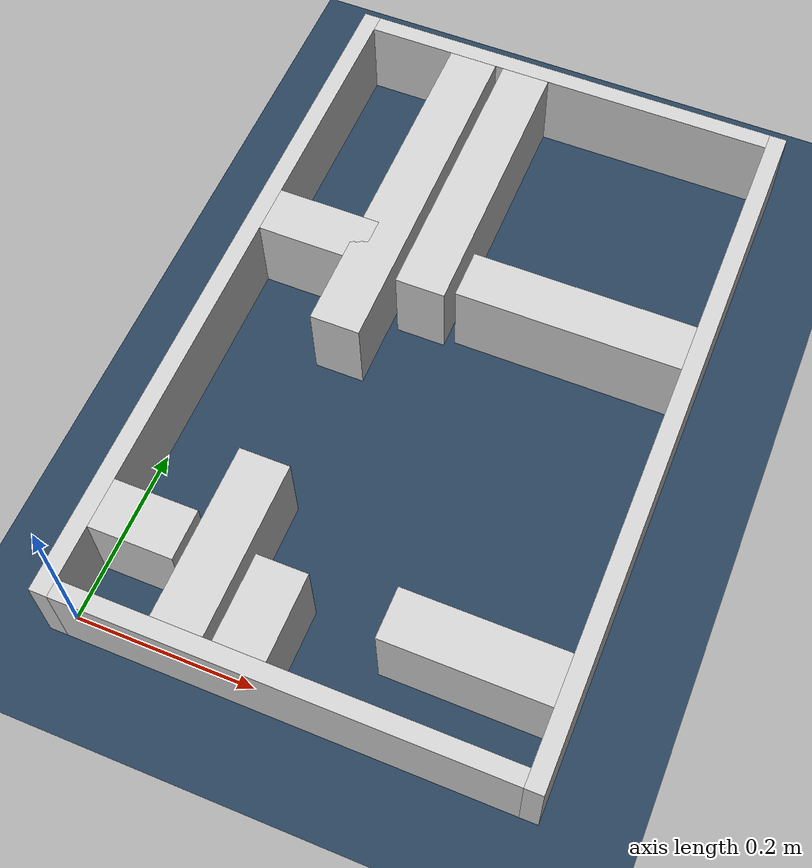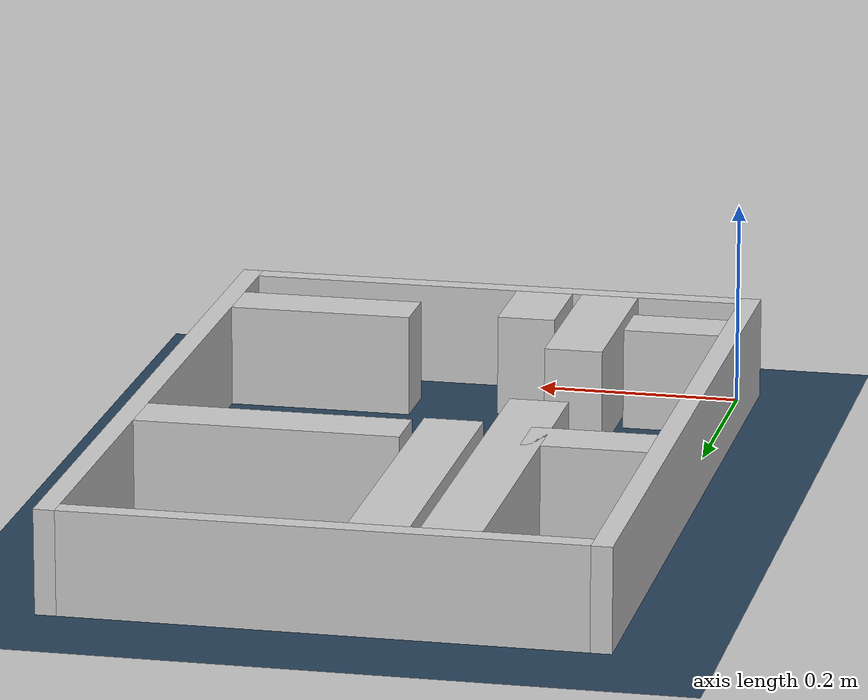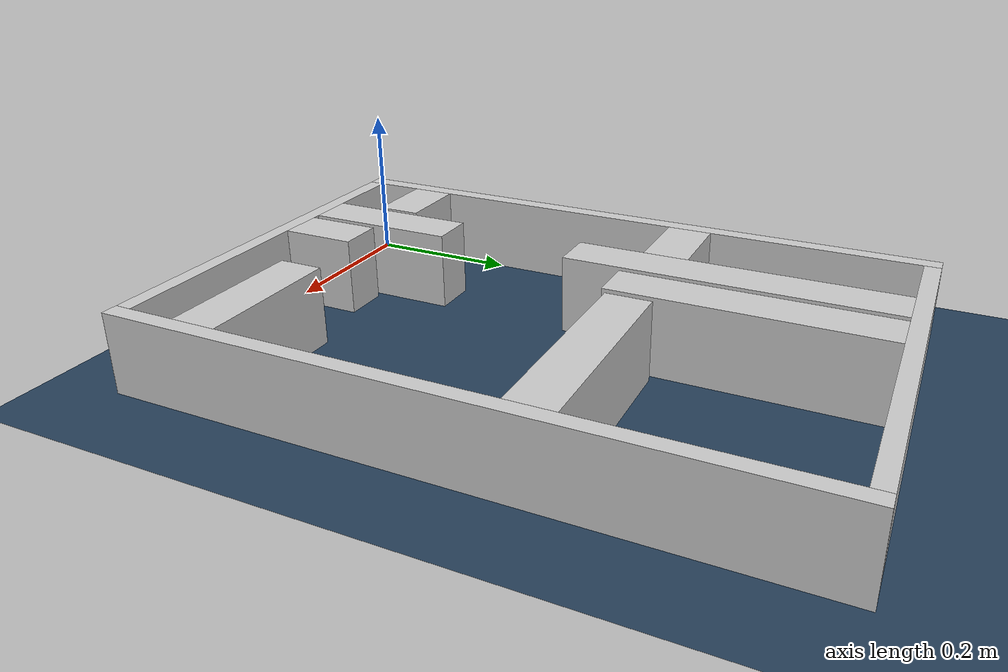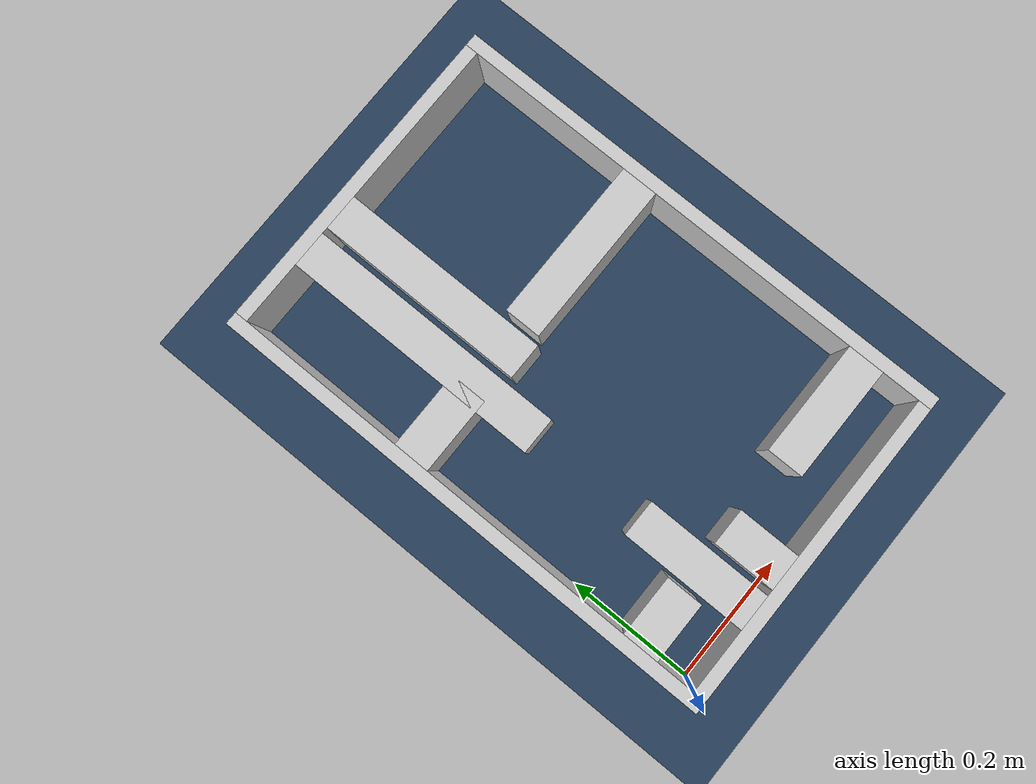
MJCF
<?xml version="1.0" ?>
<mujoco model="generated_real_template">
  <compiler angle="degree"/>
  <option timestep="0.002" integrator="implicitfast" iterations="100" cone="elliptic"/>
  <default>
    <geom density="1"/>
  </default>
  <asset>
    <texture builtin="gradient" height="3072" rgb1="0.3 0.5 0.7" rgb2="0 0 0" type="skybox" width="512"/>
    <texture builtin="checker" height="300" mark="edge" markrgb="0.8 0.8 0.8" name="groundplane" rgb1="0.2 0.3 0.4" rgb2="0.1 0.2 0.3" type="2d" width="300"/>
    <material name="groundplane" reflectance="0.2" texrepeat="5 5" texture="groundplane" texuniform="true"/>
  </asset>
  <worldbody>
    <light dir="0 0 -1" directional="true" pos="0 0 1.5"/>
    <geom name="floor" type="plane" condim="4" friction="0.5 0.005 0.001" material="groundplane" size="0 0 0.05"/>
    <body name="walls">
      <geom name="wall_boundary_left" type="box" condim="4" friction="1.0 0.005 0.0001" rgba="0.8 0.8 0.8 1" pos="-0.010000 0.387500 0.050000" euler="0 0 0.000000" size="0.010000 0.407500 0.050000"/>
      <geom name="wall_boundary_right" type="box" condim="4" friction="1.0 0.005 0.0001" rgba="0.8 0.8 0.8 1" pos="0.500000 0.387500 0.050000" euler="0 0 0.000000" size="0.010000 0.407500 0.050000"/>
      <geom name="wall_boundary_bottom" type="box" condim="4" friction="1.0 0.005 0.0001" rgba="0.8 0.8 0.8 1" pos="0.245000 -0.010000 0.050000" euler="0 0 0.000000" size="0.245000 0.010000 0.050000"/>
      <geom name="wall_boundary_top" type="box" condim="4" friction="1.0 0.005 0.0001" rgba="0.8 0.8 0.8 1" pos="0.245000 0.785000 0.050000" euler="0 0 0.000000" size="0.245000 0.010000 0.050000"/>
      <geom name="wall_inner_1_1" type="box" condim="4" friction="1.0 0.005 0.0001" rgba="0.8 0.8 0.8 1" pos="0.129495 0.098128 0.050000" euler="0 0 90.000000" size="0.098128 0.028500 0.050000"/>
      <geom name="wall_inner_1_2" type="box" condim="4" friction="1.0 0.005 0.0001" rgba="0.8 0.8 0.8 1" pos="0.129495 0.571511 0.050000" euler="0 0 90.000000" size="0.203489 0.028500 0.050000"/>
      <geom name="wall_inner_2_1" type="box" condim="4" friction="1.0 0.005 0.0001" rgba="0.8 0.8 0.8 1" pos="0.047091 0.088842 0.050000" euler="0 0 0.000000" size="0.047091 0.028500 0.050000"/>
      <geom name="wall_inner_2_2" type="box" condim="4" friction="1.0 0.005 0.0001" rgba="0.8 0.8 0.8 1" pos="0.399824 0.088842 0.050000" euler="0 0 0.000000" size="0.090176 0.028500 0.050000"/>
      <geom name="wall_inner_3_1" type="box" condim="4" friction="1.0 0.005 0.0001" rgba="0.8 0.8 0.8 1" pos="0.195914 0.048362 0.050000" euler="0 0 90.000000" size="0.048362 0.028500 0.050000"/>
      <geom name="wall_inner_3_2" type="box" condim="4" friction="1.0 0.005 0.0001" rgba="0.8 0.8 0.8 1" pos="0.195914 0.610525 0.050000" euler="0 0 90.000000" size="0.164475 0.028500 0.050000"/>
      <geom name="wall_inner_4_1" type="box" condim="4" friction="1.0 0.005 0.0001" rgba="0.8 0.8 0.8 1" pos="0.059968 0.482342 0.050000" euler="0 0 0.000000" size="0.059968 0.028500 0.050000"/>
      <geom name="wall_inner_4_2" type="box" condim="4" friction="1.0 0.005 0.0001" rgba="0.8 0.8 0.8 1" pos="0.362217 0.482342 0.050000" euler="0 0 0.000000" size="0.127783 0.028500 0.050000"/>
    </body>
  </worldbody>
</mujoco>
